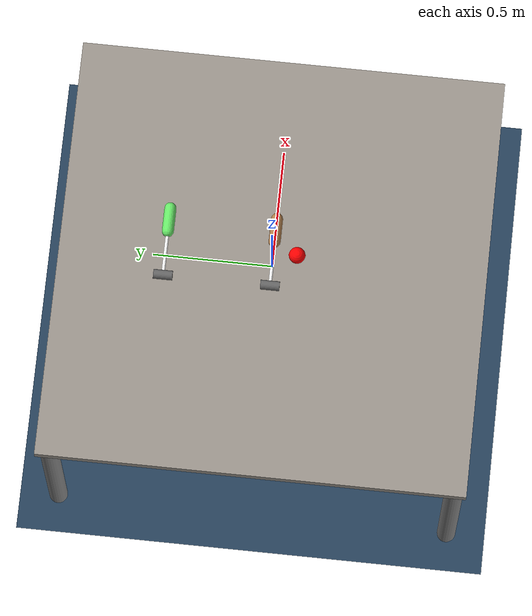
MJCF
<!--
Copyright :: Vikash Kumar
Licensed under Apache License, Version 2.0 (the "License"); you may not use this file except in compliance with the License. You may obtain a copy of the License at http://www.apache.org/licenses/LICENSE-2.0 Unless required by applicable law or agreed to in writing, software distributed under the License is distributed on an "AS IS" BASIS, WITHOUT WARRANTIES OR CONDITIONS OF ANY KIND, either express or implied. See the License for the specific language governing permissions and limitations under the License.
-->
<mujoco model='Reorient'>

    <default>
        <default class="board">
            <geom type="box" material="MatWood" />
        </default>
    </default>

    <!-- ======= WORLD ======= -->
    <worldbody>
        <light directional='false' castshadow='false' diffuse='.7 .7 .7' specular='0.03 0.03 0.03' pos='-1 -1.0 4.0' dir='1 1.0 -4'/>
        <geom name='ground' size="1.5 1.5 0.25" pos="0 0 -1" type="plane" contype="1" conaffinity="0" material="groundplane" />
        <camera name="fixed" pos="0 -0.7 0.7" quat="0.92388 0.382683 0 0" />
        <camera name="top_tool" pos="0.15 0 1.0" euler="0 0 3.14" />
        <camera name="top_target" pos="0.15 0.45 1.0" euler="0 0 3.14" />
        <camera name="top_viz" pos="0.15 0.25 1.5" euler="0 0 3.14" />

        <!-- ======= TABLE ======= -->
        <body name="table">
            <!-- Plane has better contacts -->
            <geom size="0.9 0.9 0.025" pos="0 0 -0.025" type="box" material="tablecube" />
            <geom size="0.04 0.5" pos="0.85 0.85 -0.501" quat="0 1 0 0" type="cylinder" contype="0" conaffinity="0" />
            <geom size="0.04 0.5" pos="-0.85 0.85 -0.501" quat="0 1 0 0" type="cylinder" contype="0" conaffinity="0" />
            <geom size="0.04 0.5" pos="0.85 -0.85 -0.501" quat="0 1 0 0" type="cylinder" contype="0" conaffinity="0" />
            <geom size="0.04 0.5" pos="-0.85 -0.85 -0.501" quat="0 1 0 0" type="cylinder" contype="0" conaffinity="0" />
        </body>

        <body name="controller1" pos="0.05 -0.1 0.040">
            <geom size="0.035" pos="0 0 0" type="sphere" rgba="1 0 0 1" />
            <joint name="crx1" pos="0 0 0" type="slide" axis="1 0 0" range="-.3 .3" damping="20" />
            <joint name="cry1" pos="0 0 0" type="slide" axis="0 1 0" range="-.3 .3" damping="20" />
        </body>

        <!-- ======= Hammer ======= -->
        <body name="Object" pos="0.15 0 0.035" quat="0.707388 0.706825 0 0">
             <include file="hammer.xml"/>
             <joint type="hinge" axis="0 1 0" pos="-0.1 0.0 0.0" range="-3.142 3.142"/>
        </body>

        <body name="target" pos="0.15 0.45 0.036" quat="0.707388 0.706825 0 0">
            <site name="target_top" pos="-0.26 0 0.0" size="0.01" rgba="0.4 0.8 0.4 0" />
            <site name="target_bottom" pos="0.07 0 0" size="0.01" rgba="0.8 0.4 0.4 0" />
            <site name="target_handle" size="0.025 0.05" quat="0.707388 0 0.706825 0" type="capsule" material="MatWood" />
            <site name="target_neck" size="0.007 0.085" pos="-0.14 0 0" quat="0.707388 0 0.706825 0" type="capsule" rgba="1 1 1 1" />
            <site name="target_head" size="0.02 0.04" pos="-0.24 0 0" type="cylinder" rgba="0.4 0.4 0.4 1" />
        </body>

    </worldbody>
    <include file='assets.xml'/>
    <actuator>
        <position name="A_crx1" joint="crx1" ctrlrange="-1 1" kp="50"/>
		<position name="A_cry1" joint="cry1" ctrlrange="-1 1" kp="50"/>
    </actuator>
</mujoco>

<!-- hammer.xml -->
<mujocoinclude>
        <!-- ======= Knife ======= -->
        <inertial pos="-0.11025 0 0" quat="0.50001 0.49999 0.49999 0.50001" mass="0.253442" diaginertia="0.00349644 0.00345287 8.947e-05"/>
        <geom name="obj_handle" size="0.025 0.05" quat="0.707388 0 0.706825 0" type="capsule" condim="4" material="MatWood" />
        <geom name="obj_neck" size="0.007 0.085" pos="-0.14 0 0" quat="0.707388 0 0.706825 0" type="capsule" condim="4" rgba="1 1 1 1" />
        <geom name="obj_head" size="0.02 0.04" pos="-0.24 0 0" type="cylinder" condim="4" rgba="0.4 0.4 0.4 1" />
        <site name="object_top" pos="-0.26 0 0.0" size="0.01" rgba="0.4 0.8 0.4 0" />
        <site name="object_bottom" pos="0.07 0 0" size="0.01" rgba="0.8 0.4 0.4 0" />
</mujocoinclude>

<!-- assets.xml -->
<mujocoinclude>
 	<compiler angle="radian" meshdir='../../../sims/Adroit/resources/meshes/' texturedir='../../../sims/Adroit/resources/textures/' />
    <option apirate="200" iterations="20" noslip_iterations="20"/>
    <size njmax="500" nconmax="100" nstack="600000" nuser_body="9" nuser_jnt="1" nuser_site="1" nuser_tendon="1" nuser_actuator="16" nuser_sensor="1" />
    <visual>
        <global offwidth="3024" offheight="1680" />
        <quality shadowsize="4096" offsamples="8" />
        <map force="0.1" fogend="5" />
    </visual>
    <default class="main">
        <mesh scale="0.001 0.001 0.001" />
        <joint limited="true" margin="0.01" armature="0.001" damping="0.05" frictionloss="0.001" />
        <geom friction="1 0.5 0.01" margin="0.0005" />
        <site size="0.005 0 0" rgba="0.4 0.9 0.4 1" />
        <tendon limited="true" />
        <general ctrllimited="true" ctrlrange="-1 1" user="0 1 0.03 0.0939711 0.513477 0.0358776 1.23598 8.40409 0.485031 6.04244 1.02187 0.175297 0.121642 0 0 0" />
        <default class="D_Touch">
            <site size="0.009 0.004 0.013" group="4" type="box" rgba="0.8 0.8 0.8 0.15" />
            <general user="0 1 0.03 0.0939711 0.513477 0.0358776 1.23598 8.40409 0.485031 6.04244 1.02187 0.175297 0.121642 0 0 0" />
        </default>
        <default class="DC_Hand">
            <geom conaffinity="0" group="4" material="MatColl" />
            <general user="0 1 0.03 0.0939711 0.513477 0.0358776 1.23598 8.40409 0.485031 6.04244 1.02187 0.175297 0.121642 0 0 0" />
        </default>
        <default class="D_Vizual">
            <geom type="mesh" contype="0" conaffinity="0" group="1" material="MatViz" />
            <general user="0 1 0.03 0.0939711 0.513477 0.0358776 1.23598 8.40409 0.485031 6.04244 1.02187 0.175297 0.121642 0 0 0" />
        </default>
        <default class="free">
            <joint type="free" limited="false" armature="0" damping="0" />
            <general user="0 1 0.03 0.0939711 0.513477 0.0358776 1.23598 8.40409 0.485031 6.04244 1.02187 0.175297 0.121642 0 0 0" />
        </default>
    </default>
    <asset>
        <texture name="030_fork" type="2d" file="./../../../YCB_sim/textures/030_fork.png"/>
        <texture name="031_spoon" type="2d" file="./../../../YCB_sim/textures/031_spoon.png"/>
        <texture name="044_flat_screwdriver" type="2d" file="./../../../YCB_sim/textures/044_flat_screwdriver.png"/>
        <material name="030_fork" texture="030_fork"/>
        <material name="031_spoon" texture="031_spoon"/>
        <material name="044_flat_screwdriver" texture="044_flat_screwdriver"/>
        <mesh name="030_fork" file="./../../../YCB_sim/meshes/030_fork.msh" scale="1.6 1.6 1.6"/>
        <mesh name="031_spoon" file="./../../../YCB_sim/meshes/031_spoon.msh" scale="1.6 1.6 1.6"/>
        <mesh name="044_flat_screwdriver" file="./../../../YCB_sim/meshes/044_flat_screwdriver.msh" scale="1.6 1.6 1.6"/>

        <texture type="cube" name="texgeom" builtin="flat" mark="cross" rgb1="0.3 0.6 0.5" rgb2="0.3 0.6 0.5" width="127" height="762" />
        <texture type="cube" name="wood" file="wood.png" />
        <texture type="2d" name="wood2d" file="wood.png" />
        <texture type="cube" name="square" file="square.png" />
        <texture type="cube" name="foil" file="silverRaw.png" />
        <texture type="cube" name="woodb" file="woodb.png" />
        <texture type="2d" name="groundplane" builtin="checker" rgb1="0.2 0.3 0.4" rgb2="0.1 0.2 0.3" width="100" height="100" />
        <texture type="2d" name="marble2d" file="marble.png" />
        <texture type="cube" name="marblecube" file="marble.png" />
        <material name="MatColl" specular="1" shininess="0.3" reflectance="0.5" rgba="0.4 0.5 0.6 1" />
        <material name="MatViz" specular="0.75" shininess="0.1" reflectance="0.5" rgba="0.9 0.7 0.5 1" />
        <material name="MatGnd" specular="0.3" shininess="0.3" reflectance="0.3" rgba="0.5 0.55 0.5 1" />
        <material name="object" texture="texgeom" />
        <material name="groundplane" texture="groundplane" texrepeat="10 10" />
        <material name="table2d" texture="marble2d" reflectance="0.3" rgba="0.8 0.8 0.8 1" />
        <material name="tablecube" texture="marblecube" rgba="0.8 0.8 0.8 1" />
        <material name="MatFoil" texture="foil" specular="1" shininess="0.3" rgba="0.9 0.9 0.9 1" />
        <material name="MatPlane" specular="0.3" shininess="0.3" rgba="0.3 0.3 0.2 1" />
        <material name="MatWood" texture="wood" texrepeat="3 3" specular="0.4" shininess="0.1" />
        <material name="MatSquare" texture="square" specular="1" shininess="0.6" rgba="0.8 0.8 0.8 1" />
        <material name="MatWoodR" texture="wood" specular="1" shininess="0.3" rgba="1 0.5 0.5 1" />
        <material name="MatWoodG" texture="wood" specular="1" shininess="0.3" rgba="0.2 1 0.2 1" />
        <material name="MatWoodB" texture="woodb" specular="1" shininess="0.3" />
        <mesh name="forearm_simple" file="forearm_simple.stl" scale="1 1 1"/>
        <mesh name="wrist" file="wrist.stl" />
        <mesh name="palm" file="palm.stl" />
        <mesh name="lfmetacarpal" file="lfmetacarpal.stl" />
        <mesh name="knuckle" file="knuckle.stl" />
        <mesh name="F3" file="F3.stl" />
        <mesh name="F2" file="F2.stl" />
        <mesh name="F1" file="F1.stl" />
        <mesh name="TH3_z" file="TH3_z.stl" />
        <mesh name="TH2_z" file="TH2_z.stl" />
        <mesh name="TH1_z" file="TH1_z.stl" />
    </asset>

 </mujocoinclude>
